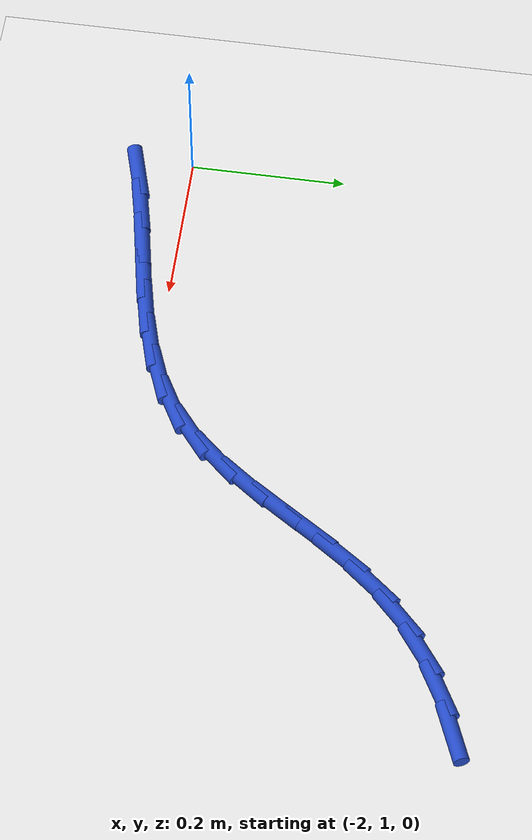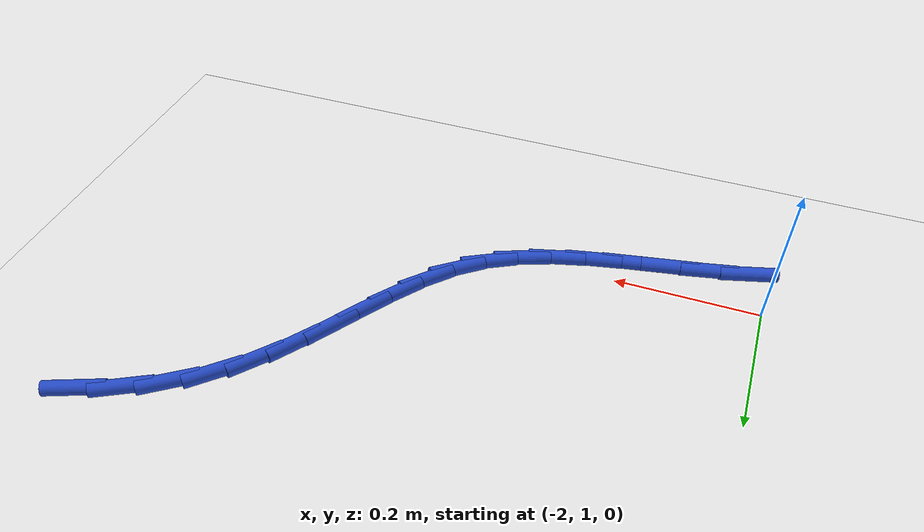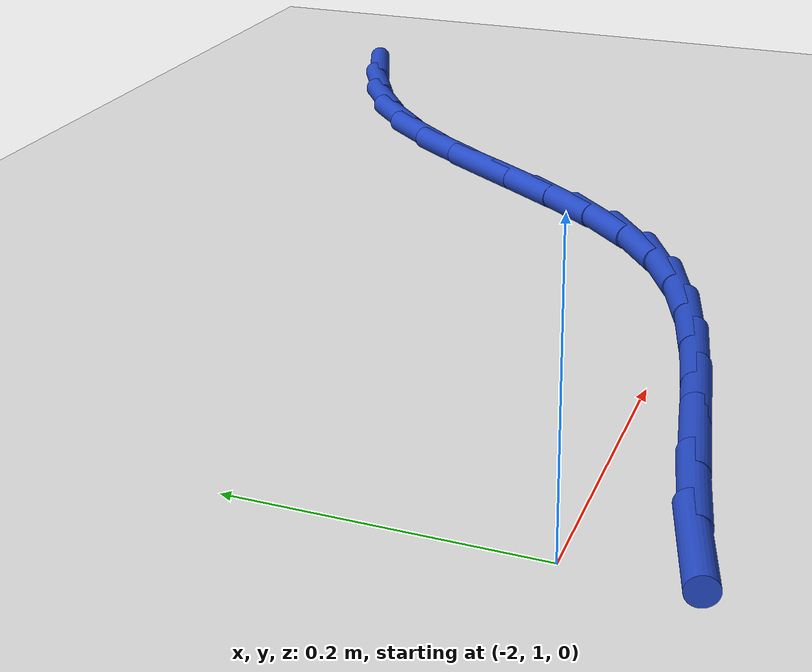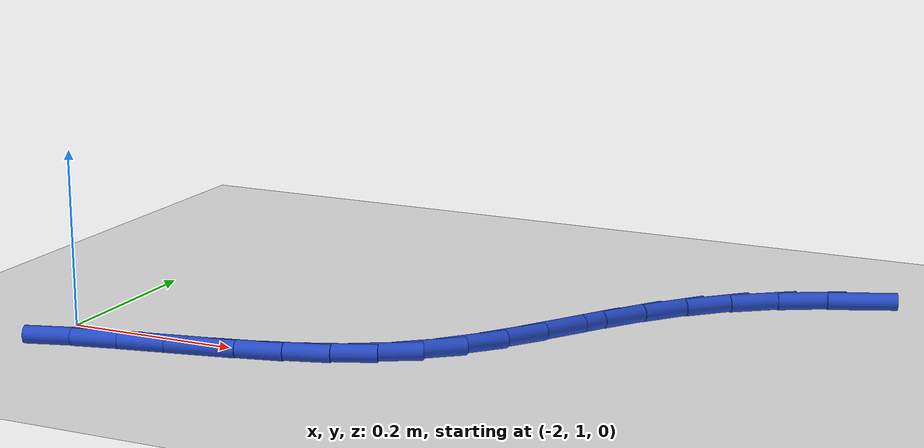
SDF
<sdf version="1.6">
 <world name="default">
  <model name="ground_plane">
   <static>1</static>
   <link name="link">
    <collision name="collision">
     <geometry><plane><normal>0 0 1</normal><size>100 100</size></plane></geometry>
     <surface><friction><ode><mu>100</mu><mu2>50</mu2></ode></friction></surface>
    </collision>
    <visual name="visual">
     <cast_shadows>0</cast_shadows>
     <geometry><plane><normal>0 0 1</normal><size>100 100</size></plane></geometry>
     <material>
      <script><uri>file://media/materials/scripts/gazebo.material</uri><name>Gazebo/WhiteGlow</name></script>
     </material>
    </visual>
   </link>
  </model>
  <model name="line">
   <link name="link_40">
    <pose>-1.2180177333495668 1.4324295236470805 0.01 0 1.57 0.3912181041498231</pose>
    <collision name="collision">
     <geometry><cylinder><radius>0.01</radius><length>0.08</length></cylinder></geometry>
    </collision>
    <visual name="visual">
     <material>
      <script><name>Gazebo/Blue</name><uri>file://media/materials/scripts/gazebo.material</uri></script>
     </material>
     <geometry><cylinder><radius>0.01</radius><length>0.08</length></cylinder></geometry>
    </visual>
   </link>
   <link name="link_41">
    <pose>-1.2712008353794386 1.410492581564133 0.01 0 1.57 0.5054370398451392</pose>
    <collision name="collision">
     <geometry><cylinder><radius>0.01</radius><length>0.08</length></cylinder></geometry>
    </collision>
    <visual name="visual">
     <material>
      <script><name>Gazebo/Blue</name><uri>file://media/materials/scripts/gazebo.material</uri></script>
     </material>
     <geometry><cylinder><radius>0.01</radius><length>0.08</length></cylinder></geometry>
    </visual>
   </link>
   <link name="link_42">
    <pose>-1.3206542224576097 1.383125903205515 0.01 0 1.57 0.6325057318195535</pose>
    <collision name="collision">
     <geometry><cylinder><radius>0.01</radius><length>0.08</length></cylinder></geometry>
    </collision>
    <visual name="visual">
     <material>
      <script><name>Gazebo/Blue</name><uri>file://media/materials/scripts/gazebo.material</uri></script>
     </material>
     <geometry><cylinder><radius>0.01</radius><length>0.08</length></cylinder></geometry>
    </visual>
   </link>
   <link name="link_43">
    <pose>-1.3652992283864869 1.3504029192461637 0.01 0 1.57 0.771501947671214</pose>
    <collision name="collision">
     <geometry><cylinder><radius>0.01</radius><length>0.08</length></cylinder></geometry>
    </collision>
    <visual name="visual">
     <material>
      <script><name>Gazebo/Blue</name><uri>file://media/materials/scripts/gazebo.material</uri></script>
     </material>
     <geometry><cylinder><radius>0.01</radius><length>0.08</length></cylinder></geometry>
    </visual>
   </link>
   <link name="link_44">
    <pose>-1.4042523132137743 1.3125176652860229 0.01 0 1.57 0.8883792527109948</pose>
    <collision name="collision">
     <geometry><cylinder><radius>0.01</radius><length>0.08</length></cylinder></geometry>
    </collision>
    <visual name="visual">
     <material>
      <script><name>Gazebo/Blue</name><uri>file://media/materials/scripts/gazebo.material</uri></script>
     </material>
     <geometry><cylinder><radius>0.01</radius><length>0.08</length></cylinder></geometry>
    </visual>
   </link>
   <link name="link_45">
    <pose>-1.4382594316013602 1.2706713457732917 0.01 0 1.57 0.9639726438780598</pose>
    <collision name="collision">
     <geometry><cylinder><radius>0.01</radius><length>0.08</length></cylinder></geometry>
    </collision>
    <visual name="visual">
     <material>
      <script><name>Gazebo/Blue</name><uri>file://media/materials/scripts/gazebo.material</uri></script>
     </material>
     <geometry><cylinder><radius>0.01</radius><length>0.08</length></cylinder></geometry>
    </visual>
   </link>
   <link name="link_46">
    <pose>-1.4688772483453576 1.226566254257696 0.01 0 1.57 0.9981541267013552</pose>
    <collision name="collision">
     <geometry><cylinder><radius>0.01</radius><length>0.08</length></cylinder></geometry>
    </collision>
    <visual name="visual">
     <material>
      <script><name>Gazebo/Blue</name><uri>file://media/materials/scripts/gazebo.material</uri></script>
     </material>
     <geometry><cylinder><radius>0.01</radius><length>0.08</length></cylinder></geometry>
    </visual>
   </link>
   <link name="link_47">
    <pose>-1.4976683280133842 1.181908330858896 0.01 0 1.57 0.9904116496803475</pose>
    <collision name="collision">
     <geometry><cylinder><radius>0.01</radius><length>0.08</length></cylinder></geometry>
    </collision>
    <visual name="visual">
     <material>
      <script><name>Gazebo/Blue</name><uri>file://media/materials/scripts/gazebo.material</uri></script>
     </material>
     <geometry><cylinder><radius>0.01</radius><length>0.08</length></cylinder></geometry>
    </visual>
   </link>
   <link name="link_48">
    <pose>-1.526195235173056 1.13840351569655 0.01 0 1.57 0.9377531179695614</pose>
    <collision name="collision">
     <geometry><cylinder><radius>0.01</radius><length>0.08</length></cylinder></geometry>
    </collision>
    <visual name="visual">
     <material>
      <script><name>Gazebo/Blue</name><uri>file://media/materials/scripts/gazebo.material</uri></script>
     </material>
     <geometry><cylinder><radius>0.01</radius><length>0.08</length></cylinder></geometry>
    </visual>
   </link>
   <link name="link_49">
    <pose>-1.55602053439199 1.0977577488903179 0.01 0 1.57 0.8347207703461984</pose>
    <collision name="collision">
     <geometry><cylinder><radius>0.01</radius><length>0.08</length></cylinder></geometry>
    </collision>
    <visual name="visual">
     <material>
      <script><name>Gazebo/Blue</name><uri>file://media/materials/scripts/gazebo.material</uri></script>
     </material>
     <geometry><cylinder><radius>0.01</radius><length>0.08</length></cylinder></geometry>
    </visual>
   </link>
   <link name="link_50">
    <pose>-1.5887067902378011 1.061676970559858 0.01 0 1.57 0.6777907222157921</pose>
    <collision name="collision">
     <geometry><cylinder><radius>0.01</radius><length>0.08</length></cylinder></geometry>
    </collision>
    <visual name="visual">
     <material>
      <script><name>Gazebo/Blue</name><uri>file://media/materials/scripts/gazebo.material</uri></script>
     </material>
     <geometry><cylinder><radius>0.01</radius><length>0.08</length></cylinder></geometry>
    </visual>
   </link>
   <link name="link_51">
    <pose>-1.6257854610123526 1.031828125647558 0.01 0 1.57 0.5065853276404212</pose>
    <collision name="collision">
     <geometry><cylinder><radius>0.01</radius><length>0.08</length></cylinder></geometry>
    </collision>
    <visual name="visual">
     <material>
      <script><name>Gazebo/Blue</name><uri>file://media/materials/scripts/gazebo.material</uri></script>
     </material>
     <geometry><cylinder><radius>0.01</radius><length>0.08</length></cylinder></geometry>
    </visual>
   </link>
   <link name="link_52">
    <pose>-1.6677310687088054 1.0085531714212772 0.01 0 1.57 0.3725883030408081</pose>
    <collision name="collision">
     <geometry><cylinder><radius>0.01</radius><length>0.08</length></cylinder></geometry>
    </collision>
    <visual name="visual">
     <material>
      <script><name>Gazebo/Blue</name><uri>file://media/materials/scripts/gazebo.material</uri></script>
     </material>
     <geometry><cylinder><radius>0.01</radius><length>0.08</length></cylinder></geometry>
    </visual>
   </link>
   <link name="link_53">
    <pose>-1.713727280966982 0.9905758350874241 0.01 0 1.57 0.27850542384754723</pose>
    <collision name="collision">
     <geometry><cylinder><radius>0.01</radius><length>0.08</length></cylinder></geometry>
    </collision>
    <visual name="visual">
     <material>
      <script><name>Gazebo/Blue</name><uri>file://media/materials/scripts/gazebo.material</uri></script>
     </material>
     <geometry><cylinder><radius>0.01</radius><length>0.08</length></cylinder></geometry>
    </visual>
   </link>
   <link name="link_54">
    <pose>-1.7628792885585582 0.976521464335898 0.01 0 1.57 0.22016881367419885</pose>
    <collision name="collision">
     <geometry><cylinder><radius>0.01</radius><length>0.08</length></cylinder></geometry>
    </collision>
    <visual name="visual">
     <material>
      <script><name>Gazebo/Blue</name><uri>file://media/materials/scripts/gazebo.material</uri></script>
     </material>
     <geometry><cylinder><radius>0.01</radius><length>0.08</length></cylinder></geometry>
    </visual>
   </link>
   <link name="link_55">
    <pose>-1.8142922822552097 0.9650154068565991 0.01 0 1.57 0.19332164766365995</pose>
    <collision name="collision">
     <geometry><cylinder><radius>0.01</radius><length>0.08</length></cylinder></geometry>
    </collision>
    <visual name="visual">
     <material>
      <script><name>Gazebo/Blue</name><uri>file://media/materials/scripts/gazebo.material</uri></script>
     </material>
     <geometry><cylinder><radius>0.01</radius><length>0.08</length></cylinder></geometry>
    </visual>
   </link>
   <link name="link_56">
    <pose>-1.8670714528286125 0.9546830103394278 0.01 0 1.57 0.19528707941820816</pose>
    <collision name="collision">
     <geometry><cylinder><radius>0.01</radius><length>0.08</length></cylinder></geometry>
    </collision>
    <visual name="visual">
     <material>
      <script><name>Gazebo/Blue</name><uri>file://media/materials/scripts/gazebo.material</uri></script>
     </material>
     <geometry><cylinder><radius>0.01</radius><length>0.08</length></cylinder></geometry>
    </visual>
   </link>
   <link name="link_57">
    <pose>-1.9203219910504428 0.9441496224742838 0.01 0 1.57 0.22532753048001988</pose>
    <collision name="collision">
     <geometry><cylinder><radius>0.01</radius><length>0.08</length></cylinder></geometry>
    </collision>
    <visual name="visual">
     <material>
      <script><name>Gazebo/Blue</name><uri>file://media/materials/scripts/gazebo.material</uri></script>
     </material>
     <geometry><cylinder><radius>0.01</radius><length>0.08</length></cylinder></geometry>
    </visual>
   </link>
   <link name="link_58">
    <pose>-1.973149087692377 0.9320405909510673 0.01 0 1.57 0.284436566805066</pose>
    <collision name="collision">
     <geometry><cylinder><radius>0.01</radius><length>0.08</length></cylinder></geometry>
    </collision>
    <visual name="visual">
     <material>
      <script><name>Gazebo/Blue</name><uri>file://media/materials/scripts/gazebo.material</uri></script>
     </material>
     <geometry><cylinder><radius>0.01</radius><length>0.08</length></cylinder></geometry>
    </visual>
   </link>
  </model>
 </world>
</sdf>
